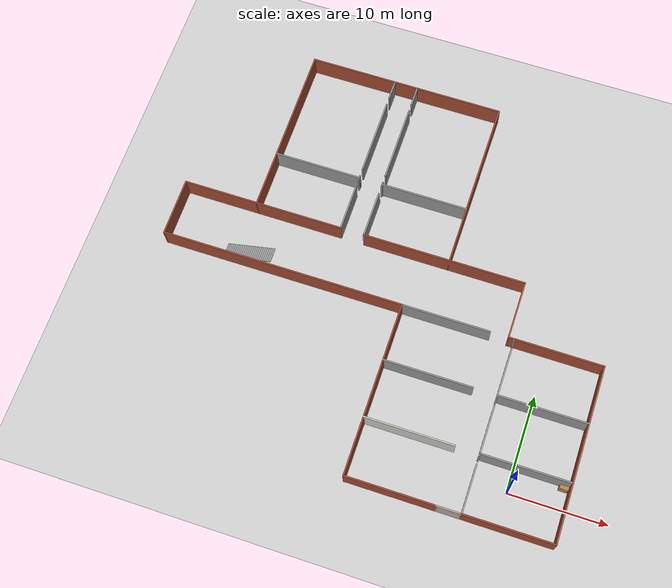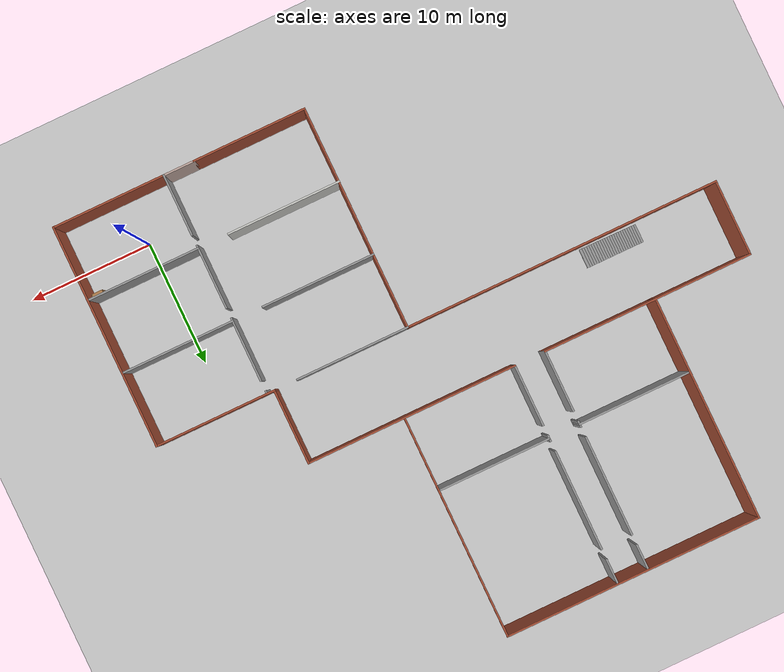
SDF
<sdf version="1.7">
 <world name="default">
  <light name="sun" type="directional">
   <pose>0 0 10 0 -0 0</pose>
   <diffuse>0.8 0.8 0.8 1</diffuse>
   <specular>0.2 0.2 0.2 1</specular>
   <attenuation>
    <range>1000</range>
    <constant>0.9</constant>
    <linear>0.01</linear>
    <quadratic>0.001</quadratic>
   </attenuation>
   <direction>-0.5 0.1 -0.9</direction>
   <spot><inner_angle>0</inner_angle><outer_angle>0</outer_angle><falloff>0</falloff></spot>
  </light>
  <model name="ground_plane">
   <static>1</static>
   <link name="link">
    <collision name="collision">
     <geometry><plane><normal>0 0 1</normal><size>100 100</size></plane></geometry>
     <surface>
      <contact><collide_bitmask>65535</collide_bitmask></contact>
      <friction><ode><mu>100</mu><mu2>50</mu2></ode></friction>
     </surface>
    </collision>
    <visual name="visual">
     <cast_shadows>0</cast_shadows>
     <geometry><plane><normal>0 0 1</normal><size>100 100</size></plane></geometry>
     <material>
      <script><uri>file://media/materials/scripts/gazebo.material</uri><name>Gazebo/Grey</name></script>
     </material>
    </visual>
   </link>
  </model>
  <gravity>0 0 -9.8</gravity>
  <magnetic_field>6e-06 2.3e-05 -4.2e-05</magnetic_field>
  <atmosphere type="adiabatic"/>
  <physics type="ode">
   <max_step_size>0.001</max_step_size>
   <real_time_factor>1</real_time_factor>
   <real_time_update_rate>1000</real_time_update_rate>
  </physics>
  <scene><ambient>0.4 0.4 0.4 1</ambient><background>0.7 0.7 0.7 1</background><shadows>1</shadows></scene>
  <spherical_coordinates>
   <surface_model>EARTH_WGS84</surface_model>
   <latitude_deg>0</latitude_deg>
   <longitude_deg>0</longitude_deg>
   <elevation>0</elevation>
   <heading_deg>0</heading_deg>
  </spherical_coordinates>
  <model name="mrdc">
   <pose>-17.4859 17.3055 0 0 -0 0</pose>
   <link name="Stairs_2">
    <visual name="Stairs_2_Visual_0">
     <pose>-16.9146 -2 0.05 0 -0 1.5708</pose>
     <geometry><box><size>1.5 0.2148 0.1</size></box></geometry>
     <material>
      <script><uri>file://media/materials/scripts/gazebo.material</uri><name>Gazebo/Grey</name></script>
      <ambient>1 1 1 1</ambient>
     </material>
     <meta><layer>0</layer></meta>
    </visual>
    <collision name="Stairs_2_Collision_0">
     <geometry><box><size>1.5 0.2148 0.1</size></box></geometry>
     <pose>-16.9146 -2 0.05 0 -0 1.5708</pose>
    </collision>
    <visual name="Stairs_2_Visual_1">
     <pose>-16.6998 -2 0.15 0 -0 1.5708</pose>
     <geometry><box><size>1.5 0.2148 0.1</size></box></geometry>
     <material>
      <script><uri>file://media/materials/scripts/gazebo.material</uri><name>Gazebo/Grey</name></script>
      <ambient>1 1 1 1</ambient>
     </material>
     <meta><layer>0</layer></meta>
    </visual>
    <collision name="Stairs_2_Collision_1">
     <geometry><box><size>1.5 0.2148 0.1</size></box></geometry>
     <pose>-16.6998 -2 0.15 0 -0 1.5708</pose>
    </collision>
    <visual name="Stairs_2_Visual_2">
     <pose>-16.485 -2 0.25 0 -0 1.5708</pose>
     <geometry><box><size>1.5 0.2148 0.1</size></box></geometry>
     <material>
      <script><uri>file://media/materials/scripts/gazebo.material</uri><name>Gazebo/Grey</name></script>
      <ambient>1 1 1 1</ambient>
     </material>
     <meta><layer>0</layer></meta>
    </visual>
    <collision name="Stairs_2_Collision_2">
     <geometry><box><size>1.5 0.2148 0.1</size></box></geometry>
     <pose>-16.485 -2 0.25 0 -0 1.5708</pose>
    </collision>
    <visual name="Stairs_2_Visual_3">
     <pose>-16.2702 -2 0.35 0 -0 1.5708</pose>
     <geometry><box><size>1.5 0.2148 0.1</size></box></geometry>
     <material>
      <script><uri>file://media/materials/scripts/gazebo.material</uri><name>Gazebo/Grey</name></script>
      <ambient>1 1 1 1</ambient>
     </material>
     <meta><layer>0</layer></meta>
    </visual>
    <collision name="Stairs_2_Collision_3">
     <geometry><box><size>1.5 0.2148 0.1</size></box></geometry>
     <pose>-16.2702 -2 0.35 0 -0 1.5708</pose>
    </collision>
    <visual name="Stairs_2_Visual_4">
     <pose>-16.0554 -2 0.45 0 -0 1.5708</pose>
     <geometry><box><size>1.5 0.2148 0.1</size></box></geometry>
     <material>
      <script><uri>file://media/materials/scripts/gazebo.material</uri><name>Gazebo/Grey</name></script>
      <ambient>1 1 1 1</ambient>
     </material>
     <meta><layer>0</layer></meta>
    </visual>
    <collision name="Stairs_2_Collision_4">
     <geometry><box><size>1.5 0.2148 0.1</size></box></geometry>
     <pose>-16.0554 -2 0.45 0 -0 1.5708</pose>
    </collision>
    <visual name="Stairs_2_Visual_5">
     <pose>-15.8406 -2 0.55 0 -0 1.5708</pose>
     <geometry><box><size>1.5 0.2148 0.1</size></box></geometry>
     <material>
      <script><uri>file://media/materials/scripts/gazebo.material</uri><name>Gazebo/Grey</name></script>
      <ambient>1 1 1 1</ambient>
     </material>
     <meta><layer>0</layer></meta>
    </visual>
    <collision name="Stairs_2_Collision_5">
     <geometry><box><size>1.5 0.2148 0.1</size></box></geometry>
     <pose>-15.8406 -2 0.55 0 -0 1.5708</pose>
    </collision>
    <visual name="Stairs_2_Visual_6">
     <pose>-15.6258 -2 0.65 0 -0 1.5708</pose>
     <geometry><box><size>1.5 0.2148 0.1</size></box></geometry>
     <material>
      <script><uri>file://media/materials/scripts/gazebo.material</uri><name>Gazebo/Grey</name></script>
      <ambient>1 1 1 1</ambient>
     </material>
     <meta><layer>0</layer></meta>
    </visual>
    <collision name="Stairs_2_Collision_6">
     <geometry><box><size>1.5 0.2148 0.1</size></box></geometry>
     <pose>-15.6258 -2 0.65 0 -0 1.5708</pose>
    </collision>
    <visual name="Stairs_2_Visual_7">
     <pose>-15.411 -2 0.75 0 -0 1.5708</pose>
     <geometry><box><size>1.5 0.2148 0.1</size></box></geometry>
     <material>
      <script><uri>file://media/materials/scripts/gazebo.material</uri><name>Gazebo/Grey</name></script>
      <ambient>1 1 1 1</ambient>
     </material>
     <meta><layer>0</layer></meta>
    </visual>
    <collision name="Stairs_2_Collision_7">
     <geometry><box><size>1.5 0.2148 0.1</size></box></geometry>
     <pose>-15.411 -2 0.75 0 -0 1.5708</pose>
    </collision>
    <visual name="Stairs_2_Visual_8">
     <pose>-15.1962 -2 0.85 0 -0 1.5708</pose>
     <geometry><box><size>1.5 0.2148 0.1</size></box></geometry>
     <material>
      <script><uri>file://media/materials/scripts/gazebo.material</uri><name>Gazebo/Grey</name></script>
      <ambient>1 1 1 1</ambient>
     </material>
     <meta><layer>0</layer></meta>
    </visual>
    <collision name="Stairs_2_Collision_8">
     <geometry><box><size>1.5 0.2148 0.1</size></box></geometry>
     <pose>-15.1962 -2 0.85 0 -0 1.5708</pose>
    </collision>
    <visual name="Stairs_2_Visual_9">
     <pose>-14.9814 -2 0.95 0 -0 1.5708</pose>
     <geometry><box><size>1.5 0.2148 0.1</size></box></geometry>
     <material>
      <script><uri>file://media/materials/scripts/gazebo.material</uri><name>Gazebo/Grey</name></script>
      <ambient>1 1 1 1</ambient>
     </material>
     <meta><layer>0</layer></meta>
    </visual>
    <collision name="Stairs_2_Collision_9">
     <geometry><box><size>1.5 0.2148 0.1</size></box></geometry>
     <pose>-14.9814 -2 0.95 0 -0 1.5708</pose>
    </collision>
    <visual name="Stairs_2_Visual_10">
     <pose>-14.7666 -2 1.05 0 -0 1.5708</pose>
     <geometry><box><size>1.5 0.2148 0.1</size></box></geometry>
     <material>
      <script><uri>file://media/materials/scripts/gazebo.material</uri><name>Gazebo/Grey</name></script>
      <ambient>1 1 1 1</ambient>
     </material>
     <meta><layer>0</layer></meta>
    </visual>
    <collision name="Stairs_2_Collision_10">
     <geometry><box><size>1.5 0.2148 0.1</size></box></geometry>
     <pose>-14.7666 -2 1.05 0 -0 1.5708</pose>
    </collision>
    <visual name="Stairs_2_Visual_11">
     <pose>-14.5518 -2 1.15 0 -0 1.5708</pose>
     <geometry><box><size>1.5 0.2148 0.1</size></box></geometry>
     <material>
      <script><uri>file://media/materials/scripts/gazebo.material</uri><name>Gazebo/Grey</name></script>
      <ambient>1 1 1 1</ambient>
     </material>
     <meta><layer>0</layer></meta>
    </visual>
    <collision name="Stairs_2_Collision_11">
     <geometry><box><size>1.5 0.2148 0.1</size></box></geometry>
     <pose>-14.5518 -2 1.15 0 -0 1.5708</pose>
    </collision>
    <visual name="Stairs_2_Visual_12">
     <pose>-14.337 -2 1.25 0 -0 1.5708</pose>
     <geometry><box><size>1.5 0.2148 0.1</size></box></geometry>
     <material>
      <script><uri>file://media/materials/scripts/gazebo.material</uri><name>Gazebo/Grey</name></script>
      <ambient>1 1 1 1</ambient>
     </material>
     <meta><layer>0</layer></meta>
    </visual>
    <collision name="Stairs_2_Collision_12">
     <geometry><box><size>1.5 0.2148 0.1</size></box></geometry>
     <pose>-14.337 -2 1.25 0 -0 1.5708</pose>
    </collision>
    <visual name="Stairs_2_Visual_13">
     <pose>-14.1222 -2 1.35 0 -0 1.5708</pose>
     <geometry><box><size>1.5 0.2148 0.1</size></box></geometry>
     <material>
      <script><uri>file://media/materials/scripts/gazebo.material</uri><name>Gazebo/Grey</name></script>
      <ambient>1 1 1 1</ambient>
     </material>
     <meta><layer>0</layer></meta>
    </visual>
    <collision name="Stairs_2_Collision_13">
     <geometry><box><size>1.5 0.2148 0.1</size></box></geometry>
     <pose>-14.1222 -2 1.35 0 -0 1.5708</pose>
    </collision>
    <visual name="Stairs_2_Visual_14">
     <pose>-13.9074 -2 1.45 0 -0 1.5708</pose>
     <geometry><box><size>1.5 0.2148 0.1</size></box></geometry>
     <material>
      <script><uri>file://media/materials/scripts/gazebo.material</uri><name>Gazebo/Grey</name></script>
      <ambient>1 1 1 1</ambient>
     </material>
     <meta><layer>0</layer></meta>
    </visual>
    <collision name="Stairs_2_Collision_14">
     <geometry><box><size>1.5 0.2148 0.1</size></box></geometry>
     <pose>-13.9074 -2 1.45 0 -0 1.5708</pose>
    </collision>
    <visual name="Stairs_2_Visual_15">
     <pose>-13.6926 -2 1.55 0 -0 1.5708</pose>
     <geometry><box><size>1.5 0.2148 0.1</size></box></geometry>
     <material>
      <script><uri>file://media/materials/scripts/gazebo.material</uri><name>Gazebo/Grey</name></script>
      <ambient>1 1 1 1</ambient>
     </material>
     <meta><layer>0</layer></meta>
    </visual>
    <collision name="Stairs_2_Collision_15">
     <geometry><box><size>1.5 0.2148 0.1</size></box></geometry>
     <pose>-13.6926 -2 1.55 0 -0 1.5708</pose>
    </collision>
    <visual name="Stairs_2_Visual_16">
     <pose>-13.4778 -2 1.65 0 -0 1.5708</pose>
     <geometry><box><size>1.5 0.2148 0.1</size></box></geometry>
     <material>
      <script><uri>file://media/materials/scripts/gazebo.material</uri><name>Gazebo/Grey</name></script>
      <ambient>1 1 1 1</ambient>
     </material>
     <meta><layer>0</layer></meta>
    </visual>
    <collision name="Stairs_2_Collision_16">
     <geometry><box><size>1.5 0.2148 0.1</size></box></geometry>
     <pose>-13.4778 -2 1.65 0 -0 1.5708</pose>
    </collision>
    <visual name="Stairs_2_Visual_17">
     <pose>-13.263 -2 1.75 0 -0 1.5708</pose>
     <geometry><box><size>1.5 0.2148 0.1</size></box></geometry>
     <material>
      <script><uri>file://media/materials/scripts/gazebo.material</uri><name>Gazebo/Grey</name></script>
      <ambient>1 1 1 1</ambient>
     </material>
     <meta><layer>0</layer></meta>
    </visual>
    <collision name="Stairs_2_Collision_17">
     <geometry><box><size>1.5 0.2148 0.1</size></box></geometry>
     <pose>-13.263 -2 1.75 0 -0 1.5708</pose>
    </collision>
    <visual name="Stairs_2_Visual_18">
     <pose>-13.0482 -2 1.85 0 -0 1.5708</pose>
     <geometry><box><size>1.5 0.2148 0.1</size></box></geometry>
     <material>
      <script><uri>file://media/materials/scripts/gazebo.material</uri><name>Gazebo/Grey</name></script>
      <ambient>1 1 1 1</ambient>
     </material>
     <meta><layer>0</layer></meta>
    </visual>
    <collision name="Stairs_2_Collision_18">
     <geometry><box><size>1.5 0.2148 0.1</size></box></geometry>
     <pose>-13.0482 -2 1.85 0 -0 1.5708</pose>
    </collision>
    <visual name="Stairs_2_Visual_19">
     <pose>-12.8334 -2 1.95 0 -0 1.5708</pose>
     <geometry><box><size>1.5 0.2148 0.1</size></box></geometry>
     <material>
      <script><uri>file://media/materials/scripts/gazebo.material</uri><name>Gazebo/Grey</name></script>
      <ambient>1 1 1 1</ambient>
     </material>
     <meta><layer>0</layer></meta>
    </visual>
    <collision name="Stairs_2_Collision_19">
     <geometry><box><size>1.5 0.2148 0.1</size></box></geometry>
     <pose>-12.8334 -2 1.95 0 -0 1.5708</pose>
    </collision>
    <visual name="Stairs_2_Visual_20">
     <pose>-12.6186 -2 2.05 0 -0 1.5708</pose>
     <geometry><box><size>1.5 0.2148 0.1</size></box></geometry>
     <material>
      <script><uri>file://media/materials/scripts/gazebo.material</uri><name>Gazebo/Grey</name></script>
      <ambient>1 1 1 1</ambient>
     </material>
     <meta><layer>0</layer></meta>
    </visual>
    <collision name="Stairs_2_Collision_20">
     <geometry><box><size>1.5 0.2148 0.1</size></box></geometry>
     <pose>-12.6186 -2 2.05 0 -0 1.5708</pose>
    </collision>
    <visual name="Stairs_2_Visual_21">
     <pose>-12.4038 -2 2.15 0 -0 1.5708</pose>
     <geometry><box><size>1.5 0.2148 0.1</size></box></geometry>
     <material>
      <script><uri>file://media/materials/scripts/gazebo.material</uri><name>Gazebo/Grey</name></script>
      <ambient>1 1 1 1</ambient>
     </material>
     <meta><layer>0</layer></meta>
    </visual>
    <collision name="Stairs_2_Collision_21">
     <geometry><box><size>1.5 0.2148 0.1</size></box></geometry>
     <pose>-12.4038 -2 2.15 0 -0 1.5708</pose>
    </collision>
    <visual name="Stairs_2_Visual_22">
     <pose>-12.189 -2 2.25 0 -0 1.5708</pose>
     <geometry><box><size>1.5 0.2148 0.1</size></box></geometry>
     <material>
      <script><uri>file://media/materials/scripts/gazebo.material</uri><name>Gazebo/Grey</name></script>
      <ambient>1 1 1 1</ambient>
     </material>
     <meta><layer>0</layer></meta>
    </visual>
    <collision name="Stairs_2_Collision_22">
     <geometry><box><size>1.5 0.2148 0.1</size></box></geometry>
     <pose>-12.189 -2 2.25 0 -0 1.5708</pose>
    </collision>
    <visual name="Stairs_2_Visual_23">
     <pose>-11.9742 -2 2.35 0 -0 1.5708</pose>
     <geometry><box><size>1.5 0.2148 0.1</size></box></geometry>
     <material>
      <script><uri>file://media/materials/scripts/gazebo.material</uri><name>Gazebo/Grey</name></script>
      <ambient>1 1 1 1</ambient>
     </material>
     <meta><layer>0</layer></meta>
    </visual>
    <collision name="Stairs_2_Collision_23">
     <geometry><box><size>1.5 0.2148 0.1</size></box></geometry>
     <pose>-11.9742 -2 2.35 0 -0 1.5708</pose>
    </collision>
    <visual name="Stairs_2_Visual_24">
     <pose>-11.7594 -2 2.45 0 -0 1.5708</pose>
     <geometry><box><size>1.5 0.2148 0.1</size></box></geometry>
     <material>
      <script><uri>file://media/materials/scripts/gazebo.material</uri><name>Gazebo/Grey</name></script>
      <ambient>1 1 1 1</ambient>
     </material>
     <meta><layer>0</layer></meta>
    </visual>
    <collision name="Stairs_2_Collision_24">
     <geometry><box><size>1.5 0.2148 0.1</size></box></geometry>
     <pose>-11.7594 -2 2.45 0 -0 1.5708</pose>
    </collision>
   </link>
   <link name="Wall_11">
    <collision name="Wall_11_Collision">
     <geometry><box><size>18.15 0.15 2.5</size></box></geometry>
     <pose>0 0 1.25 0 -0 0</pose>
    </collision>
    <visual name="Wall_11_Visual">
     <pose>0 0 1.25 0 -0 0</pose>
     <geometry><box><size>18.15 0.15 2.5</size></box></geometry>
     <material>
      <script><uri>file://media/materials/scripts/gazebo.material</uri><name>Gazebo/Bricks</name></script>
      <ambient>1 1 1 1</ambient>
     </material>
     <meta><layer>0</layer></meta>
    </visual>
    <pose>23.05 -12 0 0 -0 1.5708</pose>
   </link>
   <link name="Wall_13">
    <collision name="Wall_13_Collision">
     <geometry><box><size>9.85 0.15 2.5</size></box></geometry>
     <pose>0 0 1.25 0 -0 0</pose>
    </collision>
    <visual name="Wall_13_Visual">
     <pose>0 0 1.25 0 -0 0</pose>
     <geometry><box><size>9.85 0.15 2.5</size></box></geometry>
     <material>
      <script><uri>file://media/materials/scripts/gazebo.material</uri><name>Gazebo/Bricks</name></script>
      <ambient>1 1 1 1</ambient>
     </material>
     <meta><layer>0</layer></meta>
    </visual>
    <pose>18.2 -3 0 0 -0 3.14159</pose>
   </link>
   <link name="Wall_17">
    <collision name="Wall_17_Collision">
     <geometry><box><size>9.25 0.15 2.5</size></box></geometry>
     <pose>0 0 1.25 0 -0 0</pose>
    </collision>
    <visual name="Wall_17_Visual">
     <pose>0 0 1.25 0 -0 0</pose>
     <geometry><box><size>9.25 0.15 2.5</size></box></geometry>
     <material>
      <script><uri>file://media/materials/scripts/gazebo.material</uri><name>Gazebo/CeilingTiled</name></script>
      <ambient>1 1 1 1</ambient>
     </material>
     <meta><layer>0</layer></meta>
    </visual>
    <pose>6.9 -15 0 0 -0 0</pose>
   </link>
   <link name="Wall_19">
    <collision name="Wall_19_Collision">
     <geometry><box><size>9.25 0.15 2.5</size></box></geometry>
     <pose>0 0 1.25 0 -0 0</pose>
    </collision>
    <visual name="Wall_19_Visual">
     <pose>0 0 1.25 0 -0 0</pose>
     <geometry><box><size>9.25 0.15 2.5</size></box></geometry>
     <material>
      <script><uri>file://media/materials/scripts/gazebo.material</uri><name>Gazebo/Grey</name></script>
      <ambient>1 1 1 1</ambient>
     </material>
     <meta><layer>0</layer></meta>
    </visual>
    <pose>18.5 -15 0 0 -0 0</pose>
   </link>
   <link name="Wall_2">
    <collision name="Wall_2_Collision">
     <geometry><box><size>9.25 0.15 2.5</size></box></geometry>
     <pose>0 0 1.25 0 -0 0</pose>
    </collision>
    <visual name="Wall_2_Visual">
     <pose>0 0 1.25 0 -0 0</pose>
     <geometry><box><size>9.25 0.15 2.5</size></box></geometry>
     <material>
      <script><uri>file://media/materials/scripts/gazebo.material</uri><name>Gazebo/Bricks</name></script>
      <ambient>1 1 1 1</ambient>
     </material>
     <meta><layer>0</layer></meta>
    </visual>
    <pose>6.9 -21 0 0 -0 0</pose>
   </link>
   <link name="Wall_21">
    <collision name="Wall_21_Collision">
     <geometry><box><size>9.25 0.15 2.5</size></box></geometry>
     <pose>0 0 1.25 0 -0 0</pose>
    </collision>
    <visual name="Wall_21_Visual">
     <pose>0 0 1.25 0 -0 0</pose>
     <geometry><box><size>9.25 0.15 2.5</size></box></geometry>
     <material>
      <script><uri>file://media/materials/scripts/gazebo.material</uri><name>Gazebo/Grey</name></script>
      <ambient>1 1 1 1</ambient>
     </material>
     <meta><layer>0</layer></meta>
    </visual>
    <pose>6.9 -9 0 0 -0 0</pose>
   </link>
   <link name="Wall_23">
    <collision name="Wall_23_Collision">
     <geometry><box><size>9.25 0.15 2.5</size></box></geometry>
     <pose>0 0 1.25 0 -0 0</pose>
    </collision>
    <visual name="Wall_23_Visual">
     <pose>0 0 1.25 0 -0 0</pose>
     <geometry><box><size>9.25 0.15 2.5</size></box></geometry>
     <material>
      <script><uri>file://media/materials/scripts/gazebo.material</uri><name>Gazebo/Grey</name></script>
      <ambient>1 1 1 1</ambient>
     </material>
     <meta><layer>0</layer></meta>
    </visual>
    <pose>18.5 -9 0 0 -0 0</pose>
   </link>
   <link name="Wall_27">
    <collision name="Wall_27_Collision">
     <geometry><box><size>0.35 0.15 2.5</size></box></geometry>
     <pose>0 0 1.25 0 -0 0</pose>
    </collision>
    <visual name="Wall_27_Visual">
     <pose>0 0 1.25 0 -0 0</pose>
     <geometry><box><size>0.35 0.15 2.5</size></box></geometry>
     <material>
      <script><uri>file://media/materials/scripts/gazebo.material</uri><name>Gazebo/Grey</name></script>
      <ambient>1 1 1 1</ambient>
     </material>
     <meta><layer>0</layer></meta>
    </visual>
    <pose>13.95 -3.1 0 0 -0 -1.5708</pose>
   </link>
   <link name="Wall_29">
    <collision name="Wall_29_Collision">
     <geometry><box><size>5.25 0.15 2.5</size></box></geometry>
     <pose>0 0 1.25 0 -0 0</pose>
    </collision>
    <visual name="Wall_29_Visual">
     <pose>0 0 1.25 0 -0 0</pose>
     <geometry><box><size>5.25 0.15 2.5</size></box></geometry>
     <material>
      <script><uri>file://media/materials/scripts/gazebo.material</uri><name>Gazebo/Grey</name></script>
      <ambient>1 1 1 1</ambient>
     </material>
     <meta><layer>0</layer></meta>
    </visual>
    <pose>13.95 -6.65 0 0 -0 -1.5708</pose>
   </link>
   <link name="Wall_31">
    <collision name="Wall_31_Collision">
     <geometry><box><size>5.25 0.15 2.5</size></box></geometry>
     <pose>0 0 1.25 0 -0 0</pose>
    </collision>
    <visual name="Wall_31_Visual">
     <pose>0 0 1.25 0 -0 0</pose>
     <geometry><box><size>5.25 0.15 2.5</size></box></geometry>
     <material>
      <script><uri>file://media/materials/scripts/gazebo.material</uri><name>Gazebo/Grey</name></script>
      <ambient>1 1 1 1</ambient>
     </material>
     <meta><layer>0</layer></meta>
    </visual>
    <pose>13.95 -12.65 0 0 -0 -1.5708</pose>
   </link>
   <link name="Wall_33">
    <collision name="Wall_33_Collision">
     <geometry><box><size>5.05 0.15 2.5</size></box></geometry>
     <pose>0 0 1.25 0 -0 0</pose>
    </collision>
    <visual name="Wall_33_Visual">
     <pose>0 0 1.25 0 -0 0</pose>
     <geometry><box><size>5.05 0.15 2.5</size></box></geometry>
     <material>
      <script><uri>file://media/materials/scripts/gazebo.material</uri><name>Gazebo/Grey</name></script>
      <ambient>1 1 1 1</ambient>
     </material>
     <meta><layer>0</layer></meta>
    </visual>
    <pose>13.95 -18.55 0 0 -0 1.5708</pose>
   </link>
   <link name="Wall_37">
    <collision name="Wall_37_Collision">
     <geometry><box><size>9.25 0.15 2.5</size></box></geometry>
     <pose>0 0 1.25 0 -0 0</pose>
    </collision>
    <visual name="Wall_37_Visual">
     <pose>0 0 1.25 0 -0 0</pose>
     <geometry><box><size>9.25 0.15 2.5</size></box></geometry>
     <material>
      <script><uri>file://media/materials/scripts/gazebo.material</uri><name>Gazebo/Grey</name></script>
      <ambient>1 1 1 1</ambient>
     </material>
     <meta><layer>0</layer></meta>
    </visual>
    <pose>6.9 -3 0 0 -0 0</pose>
   </link>
   <link name="Wall_4">
    <collision name="Wall_4_Collision">
     <geometry><box><size>2.65 0.15 2.5</size></box></geometry>
     <pose>0 0 1.25 0 -0 0</pose>
    </collision>
    <visual name="Wall_4_Visual">
     <pose>0 0 1.25 0 -0 0</pose>
     <geometry><box><size>2.65 0.15 2.5</size></box></geometry>
     <material>
      <script><uri>file://media/materials/scripts/gazebo.material</uri><name>Gazebo/Grey</name></script>
      <ambient>0.760784 0.662745 0.627451 1</ambient>
     </material>
     <meta><layer>0</layer></meta>
    </visual>
    <pose>12.7 -21 0 0 -0 0</pose>
   </link>
   <link name="Wall_41">
    <collision name="Wall_41_Collision">
     <geometry><box><size>6.15 0.15 2.5</size></box></geometry>
     <pose>0 0 1.25 0 -0 0</pose>
    </collision>
    <visual name="Wall_41_Visual">
     <pose>0 0 1.25 0 -0 0</pose>
     <geometry><box><size>6.15 0.15 2.5</size></box></geometry>
     <material>
      <script><uri>file://media/materials/scripts/gazebo.material</uri><name>Gazebo/Bricks</name></script>
      <ambient>1 1 1 1</ambient>
     </material>
     <meta><layer>0</layer></meta>
    </visual>
    <pose>13.35 0 0 0 -0 1.5708</pose>
   </link>
   <link name="Wall_43">
    <collision name="Wall_43_Collision">
     <geometry><box><size>25.55 0.15 2.5</size></box></geometry>
     <pose>0 0 1.25 0 -0 0</pose>
    </collision>
    <visual name="Wall_43_Visual">
     <pose>0 0 1.25 0 -0 0</pose>
     <geometry><box><size>25.55 0.15 2.5</size></box></geometry>
     <material>
      <script><uri>file://media/materials/scripts/gazebo.material</uri><name>Gazebo/Bricks</name></script>
      <ambient>1 1 1 1</ambient>
     </material>
     <meta><layer>0</layer></meta>
    </visual>
    <pose>-10.35 -3 0 0 -0 3.14159</pose>
   </link>
   <link name="Wall_45">
    <collision name="Wall_45_Collision">
     <geometry><box><size>17.15 0.15 2.5</size></box></geometry>
     <pose>0 0 1.25 0 -0 0</pose>
    </collision>
    <visual name="Wall_45_Visual">
     <pose>0 0 1.25 0 -0 0</pose>
     <geometry><box><size>17.15 0.15 2.5</size></box></geometry>
     <material>
      <script><uri>file://media/materials/scripts/gazebo.material</uri><name>Gazebo/Bricks</name></script>
      <ambient>1 1 1 1</ambient>
     </material>
     <meta><layer>0</layer></meta>
    </visual>
    <pose>4.85 3 0 0 -0 3.14159</pose>
   </link>
   <link name="Wall_47">
    <collision name="Wall_47_Collision">
     <geometry><box><size>18.15 0.15 2.5</size></box></geometry>
     <pose>0 0 1.25 0 -0 0</pose>
    </collision>
    <visual name="Wall_47_Visual">
     <pose>0 0 1.25 0 -0 0</pose>
     <geometry><box><size>18.15 0.15 2.5</size></box></geometry>
     <material>
      <script><uri>file://media/materials/scripts/gazebo.material</uri><name>Gazebo/Bricks</name></script>
      <ambient>1 1 1 1</ambient>
     </material>
     <meta><layer>0</layer></meta>
    </visual>
    <pose>5.45 12 0 0 -0 1.5708</pose>
   </link>
   <link name="Wall_49">
    <collision name="Wall_49_Collision">
     <geometry><box><size>17.05 0.15 2.5</size></box></geometry>
     <pose>0 0 1.25 0 -0 0</pose>
    </collision>
    <visual name="Wall_49_Visual">
     <pose>0 0 1.25 0 -0 0</pose>
     <geometry><box><size>17.05 0.15 2.5</size></box></geometry>
     <material>
      <script><uri>file://media/materials/scripts/gazebo.material</uri><name>Gazebo/Bricks</name></script>
      <ambient>1 1 1 1</ambient>
     </material>
     <meta><layer>0</layer></meta>
    </visual>
    <pose>-14.6 3 0 0 -0 3.14159</pose>
   </link>
   <link name="Wall_51">
    <collision name="Wall_51_Collision">
     <geometry><box><size>18.15 0.15 2.5</size></box></geometry>
     <pose>0 0 1.25 0 -0 0</pose>
    </collision>
    <visual name="Wall_51_Visual">
     <pose>0 0 1.25 0 -0 0</pose>
     <geometry><box><size>18.15 0.15 2.5</size></box></geometry>
     <material>
      <script><uri>file://media/materials/scripts/gazebo.material</uri><name>Gazebo/Bricks</name></script>
      <ambient>1 1 1 1</ambient>
     </material>
     <meta><layer>0</layer></meta>
    </visual>
    <pose>-15.25 12 0 0 -0 1.5708</pose>
   </link>
   <link name="Wall_53">
    <collision name="Wall_53_Collision">
     <geometry><box><size>20.85 0.15 2.5</size></box></geometry>
     <pose>0 0 1.25 0 -0 0</pose>
    </collision>
    <visual name="Wall_53_Visual">
     <pose>0 0 1.25 0 -0 0</pose>
     <geometry><box><size>20.85 0.15 2.5</size></box></geometry>
     <material>
      <script><uri>file://media/materials/scripts/gazebo.material</uri><name>Gazebo/Bricks</name></script>
      <ambient>1 1 1 1</ambient>
     </material>
     <meta><layer>0</layer></meta>
    </visual>
    <pose>-4.9 21 0 0 -0 0</pose>
   </link>
   <link name="Wall_55">
    <collision name="Wall_55_Collision">
     <geometry><box><size>9.25 0.15 2.5</size></box></geometry>
     <pose>0 0 1.25 0 -0 0</pose>
    </collision>
    <visual name="Wall_55_Visual">
     <pose>0 0 1.25 0 -0 0</pose>
     <geometry><box><size>9.25 0.15 2.5</size></box></geometry>
     <material>
      <script><uri>file://media/materials/scripts/gazebo.material</uri><name>Gazebo/Grey</name></script>
      <ambient>1 1 1 1</ambient>
     </material>
     <meta><layer>0</layer></meta>
    </visual>
    <pose>-10.7 9 0 0 -0 0</pose>
   </link>
   <link name="Wall_57">
    <collision name="Wall_57_Collision">
     <geometry><box><size>9.25 0.15 2.5</size></box></geometry>
     <pose>0 0 1.25 0 -0 0</pose>
    </collision>
    <visual name="Wall_57_Visual">
     <pose>0 0 1.25 0 -0 0</pose>
     <geometry><box><size>9.25 0.15 2.5</size></box></geometry>
     <material>
      <script><uri>file://media/materials/scripts/gazebo.material</uri><name>Gazebo/Grey</name></script>
      <ambient>1 1 1 1</ambient>
     </material>
     <meta><layer>0</layer></meta>
    </visual>
    <pose>0.899999 9 0 0 -0 0</pose>
   </link>
   <link name="Wall_59">
    <collision name="Wall_59_Collision">
     <geometry><box><size>5.05 0.15 2.5</size></box></geometry>
     <pose>0 0 1.25 0 -0 0</pose>
    </collision>
    <visual name="Wall_59_Visual">
     <pose>0 0 1.25 0 -0 0</pose>
     <geometry><box><size>5.05 0.15 2.5</size></box></geometry>
     <material>
      <script><uri>file://media/materials/scripts/gazebo.material</uri><name>Gazebo/Grey</name></script>
      <ambient>1 1 1 1</ambient>
     </material>
     <meta><layer>0</layer></meta>
    </visual>
    <pose>-3.65 5.45 0 0 -0 -1.5708</pose>
   </link>
   <link name="Wall_61">
    <collision name="Wall_61_Collision">
     <geometry><box><size>5.05 0.15 2.5</size></box></geometry>
     <pose>0 0 1.25 0 -0 0</pose>
    </collision>
    <visual name="Wall_61_Visual">
     <pose>0 0 1.25 0 -0 0</pose>
     <geometry><box><size>5.05 0.15 2.5</size></box></geometry>
     <material>
      <script><uri>file://media/materials/scripts/gazebo.material</uri><name>Gazebo/Grey</name></script>
      <ambient>1 1 1 1</ambient>
     </material>
     <meta><layer>0</layer></meta>
    </visual>
    <pose>-6.15 5.45 0 0 -0 1.5708</pose>
   </link>
   <link name="Wall_63">
    <collision name="Wall_63_Collision">
     <geometry><box><size>0.55 0.15 2.5</size></box></geometry>
     <pose>0 0 1.25 0 -0 0</pose>
    </collision>
    <visual name="Wall_63_Visual">
     <pose>0 0 1.25 0 -0 0</pose>
     <geometry><box><size>0.55 0.15 2.5</size></box></geometry>
     <material>
      <script><uri>file://media/materials/scripts/gazebo.material</uri><name>Gazebo/Grey</name></script>
      <ambient>1 1 1 1</ambient>
     </material>
     <meta><layer>0</layer></meta>
    </visual>
    <pose>-3.65 9 0 0 -0 1.5708</pose>
   </link>
   <link name="Wall_65">
    <collision name="Wall_65_Collision">
     <geometry><box><size>0.55 0.15 2.5</size></box></geometry>
     <pose>0 0 1.25 0 -0 0</pose>
    </collision>
    <visual name="Wall_65_Visual">
     <pose>0 0 1.25 0 -0 0</pose>
     <geometry><box><size>0.55 0.15 2.5</size></box></geometry>
     <material>
      <script><uri>file://media/materials/scripts/gazebo.material</uri><name>Gazebo/Grey</name></script>
      <ambient>1 1 1 1</ambient>
     </material>
     <meta><layer>0</layer></meta>
    </visual>
    <pose>-6.15 9 0 0 -0 1.5708</pose>
   </link>
   <link name="Wall_67">
    <collision name="Wall_67_Collision">
     <geometry><box><size>8.15 0.15 2.5</size></box></geometry>
     <pose>0 0 1.25 0 -0 0</pose>
    </collision>
    <visual name="Wall_67_Visual">
     <pose>0 0 1.25 0 -0 0</pose>
     <geometry><box><size>8.15 0.15 2.5</size></box></geometry>
     <material>
      <script><uri>file://media/materials/scripts/gazebo.material</uri><name>Gazebo/Grey</name></script>
      <ambient>1 1 1 1</ambient>
     </material>
     <meta><layer>0</layer></meta>
    </visual>
    <pose>-3.65 14.1 0 0 -0 1.5708</pose>
   </link>
   <link name="Wall_69">
    <collision name="Wall_69_Collision">
     <geometry><box><size>8.15 0.15 2.5</size></box></geometry>
     <pose>0 0 1.25 0 -0 0</pose>
    </collision>
    <visual name="Wall_69_Visual">
     <pose>0 0 1.25 0 -0 0</pose>
     <geometry><box><size>8.15 0.15 2.5</size></box></geometry>
     <material>
      <script><uri>file://media/materials/scripts/gazebo.material</uri><name>Gazebo/Grey</name></script>
      <ambient>1 1 1 1</ambient>
     </material>
     <meta><layer>0</layer></meta>
    </visual>
    <pose>-6.15 14.1 0 0 -0 1.5708</pose>
   </link>
   <link name="Wall_7">
    <collision name="Wall_7_Collision">
     <geometry><box><size>9.25 0.15 2.5</size></box></geometry>
     <pose>0 0 1.25 0 -0 0</pose>
    </collision>
    <visual name="Wall_7_Visual">
     <pose>0 0 1.25 0 -0 0</pose>
     <geometry><box><size>9.25 0.15 2.5</size></box></geometry>
     <material>
      <script><uri>file://media/materials/scripts/gazebo.material</uri><name>Gazebo/Bricks</name></script>
      <ambient>1 1 1 1</ambient>
     </material>
     <meta><layer>0</layer></meta>
    </visual>
    <pose>18.5 -21 0 0 -0 0</pose>
   </link>
   <link name="Wall_71">
    <collision name="Wall_71_Collision">
     <geometry><box><size>2.15 0.15 2.5</size></box></geometry>
     <pose>0 0 1.25 0 -0 0</pose>
    </collision>
    <visual name="Wall_71_Visual">
     <pose>0 0 1.25 0 -0 0</pose>
     <geometry><box><size>2.15 0.15 2.5</size></box></geometry>
     <material>
      <script><uri>file://media/materials/scripts/gazebo.material</uri><name>Gazebo/Grey</name></script>
      <ambient>1 1 1 1</ambient>
     </material>
     <meta><layer>0</layer></meta>
    </visual>
    <pose>-3.65 20 0 0 -0 1.5708</pose>
   </link>
   <link name="Wall_73">
    <collision name="Wall_73_Collision">
     <geometry><box><size>2.15 0.15 2.5</size></box></geometry>
     <pose>0 0 1.25 0 -0 0</pose>
    </collision>
    <visual name="Wall_73_Visual">
     <pose>0 0 1.25 0 -0 0</pose>
     <geometry><box><size>2.15 0.15 2.5</size></box></geometry>
     <material>
      <script><uri>file://media/materials/scripts/gazebo.material</uri><name>Gazebo/Grey</name></script>
      <ambient>1 1 1 1</ambient>
     </material>
     <meta><layer>0</layer></meta>
    </visual>
    <pose>-6.15 20 0 0 -0 1.5708</pose>
   </link>
   <link name="Wall_75">
    <collision name="Wall_75_Collision">
     <geometry><box><size>6.15 0.15 2.5</size></box></geometry>
     <pose>0 0 1.25 0 -0 0</pose>
    </collision>
    <visual name="Wall_75_Visual">
     <pose>0 0 1.25 0 -0 0</pose>
     <geometry><box><size>6.15 0.15 2.5</size></box></geometry>
     <material>
      <script><uri>file://media/materials/scripts/gazebo.material</uri><name>Gazebo/Bricks</name></script>
      <ambient>1 1 1 1</ambient>
     </material>
     <meta><layer>0</layer></meta>
    </visual>
    <pose>-23.05 0 0 0 -0 1.5708</pose>
   </link>
   <link name="Wall_9">
    <collision name="Wall_9_Collision">
     <geometry><box><size>18.15 0.15 2.5</size></box></geometry>
     <pose>0 0 1.25 0 -0 0</pose>
    </collision>
    <visual name="Wall_9_Visual">
     <pose>0 0 1.25 0 -0 0</pose>
     <geometry><box><size>18.15 0.15 2.5</size></box></geometry>
     <material>
      <script><uri>file://media/materials/scripts/gazebo.material</uri><name>Gazebo/Bricks</name></script>
      <ambient>1 1 1 1</ambient>
     </material>
     <meta><layer>0</layer></meta>
    </visual>
    <pose>2.35 -12 0 0 -0 1.5708</pose>
   </link>
   <static>1</static>
  </model>
  <model name="bookshelf">
   <static>1</static>
   <link name="link">
    <inertial><mass>1</mass></inertial>
    <collision name="back">
     <pose>0 0.005 0.6 0 -0 0</pose>
     <geometry><box><size>0.9 0.01 1.2</size></box></geometry>
    </collision>
    <visual name="visual1">
     <pose>0 0.005 0.6 0 -0 0</pose>
     <geometry><box><size>0.9 0.01 1.2</size></box></geometry>
     <material>
      <script><uri>file://media/materials/scripts/gazebo.material</uri><name>Gazebo/Wood</name></script>
     </material>
    </visual>
    <collision name="left_side">
     <pose>0.45 -0.195 0.6 0 -0 0</pose>
     <geometry><box><size>0.02 0.4 1.2</size></box></geometry>
    </collision>
    <visual name="visual2">
     <pose>0.45 -0.195 0.6 0 -0 0</pose>
     <geometry><box><size>0.02 0.4 1.2</size></box></geometry>
     <material>
      <script><uri>file://media/materials/scripts/gazebo.material</uri><name>Gazebo/Wood</name></script>
     </material>
    </visual>
    <collision name="right_side">
     <pose>-0.45 -0.195 0.6 0 -0 0</pose>
     <geometry><box><size>0.02 0.4 1.2</size></box></geometry>
    </collision>
    <visual name="visual3">
     <pose>-0.45 -0.195 0.6 0 -0 0</pose>
     <geometry><box><size>0.02 0.4 1.2</size></box></geometry>
     <material>
      <script><uri>file://media/materials/scripts/gazebo.material</uri><name>Gazebo/Wood</name></script>
     </material>
    </visual>
    <collision name="bottom">
     <pose>0 -0.195 0.03 0 -0 0</pose>
     <geometry><box><size>0.88 0.4 0.06</size></box></geometry>
    </collision>
    <visual name="visual4">
     <pose>0 -0.195 0.03 0 -0 0</pose>
     <geometry><box><size>0.88 0.4 0.06</size></box></geometry>
     <material>
      <script><uri>file://media/materials/scripts/gazebo.material</uri><name>Gazebo/Wood</name></script>
     </material>
    </visual>
    <collision name="top">
     <pose>0 -0.195 1.19 0 -0 0</pose>
     <geometry><box><size>0.88 0.4 0.02</size></box></geometry>
    </collision>
    <visual name="visual5">
     <pose>0 -0.195 1.19 0 -0 0</pose>
     <geometry><box><size>0.88 0.4 0.02</size></box></geometry>
     <material>
      <script><uri>file://media/materials/scripts/gazebo.material</uri><name>Gazebo/Wood</name></script>
     </material>
    </visual>
    <collision name="low_shelf">
     <pose>0 -0.195 0.43 0 -0 0</pose>
     <geometry><box><size>0.88 0.4 0.02</size></box></geometry>
    </collision>
    <visual name="visual6">
     <pose>0 -0.195 0.43 0 -0 0</pose>
     <geometry><box><size>0.88 0.4 0.02</size></box></geometry>
     <material>
      <script><uri>file://media/materials/scripts/gazebo.material</uri><name>Gazebo/Wood</name></script>
     </material>
    </visual>
    <collision name="high_shelf">
     <pose>0 -0.195 0.8 0 -0 0</pose>
     <geometry><box><size>0.88 0.4 0.02</size></box></geometry>
    </collision>
    <visual name="visual7">
     <pose>0 -0.195 0.8 0 -0 0</pose>
     <geometry><box><size>0.88 0.4 0.02</size></box></geometry>
     <material>
      <script><uri>file://media/materials/scripts/gazebo.material</uri><name>Gazebo/Wood</name></script>
     </material>
    </visual>
   </link>
   <pose>4.99366 2.15874 0 0 -0 0</pose>
  </model>
 </world>
</sdf>
